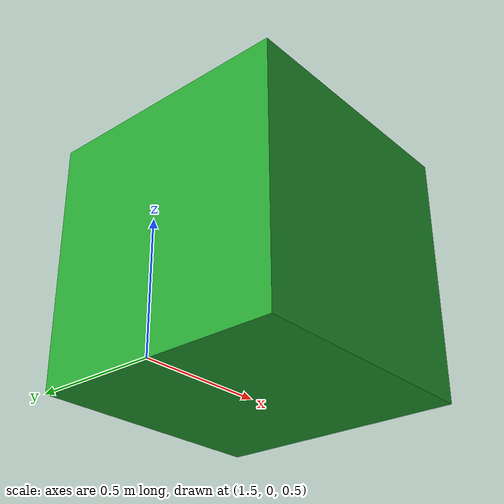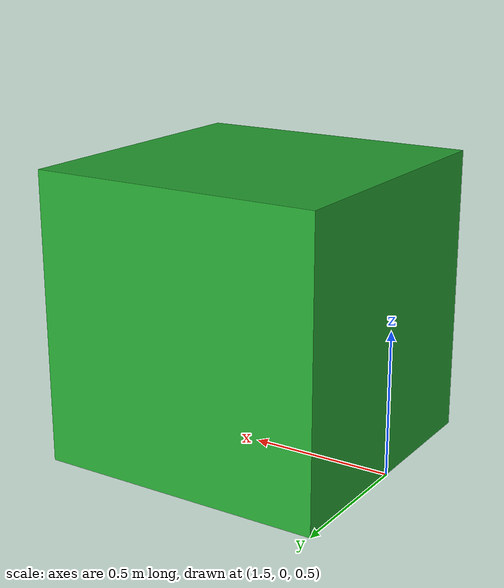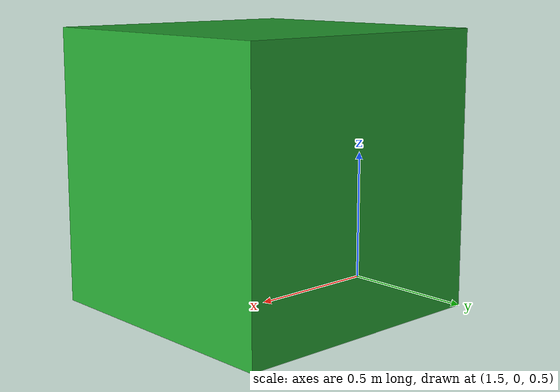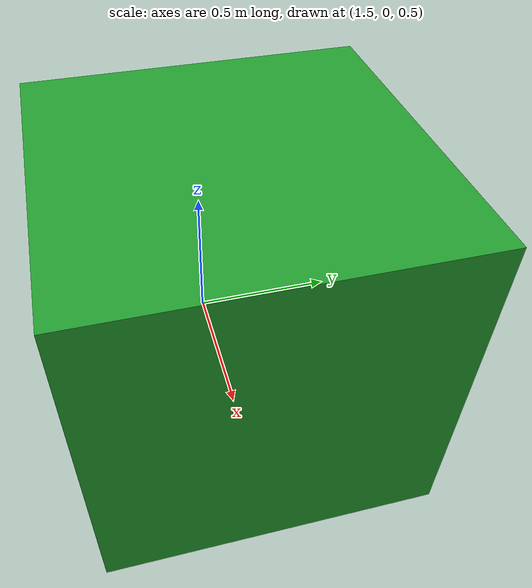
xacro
<robot name="simple_box_xacro" xmlns:xacro="http://www.ros.org/wiki/xacro">

  <!-- Constants for robot dimensions -->
  <xacro:property name="width" value="1"/>
  <xacro:property name="length" value="1"/>
  <xacro:property name="height" value="1"/>

    <link name="my_box">
      <inertial>
        <origin xyz="2 0 0" />
        <mass value="1.0" />
        <inertia  ixx="1.0" ixy="0.0"  ixz="0.0"  iyy="100.0"  iyz="0.0"  izz="1.0" />
      </inertial>
      <visual>
        <origin xyz="2 0 1"/>
        <geometry>
          <box size="${width} ${length} ${height}" />
        </geometry>
      </visual>
      <collision>
        <origin xyz="2 0 1"/>
        <geometry>
          <box size="${width} ${length} ${height}" />
        </geometry>
      </collision>
    </link>
    <gazebo reference="my_box">
      <material>Gazebo/Green</material>
    </gazebo>
  </robot>
